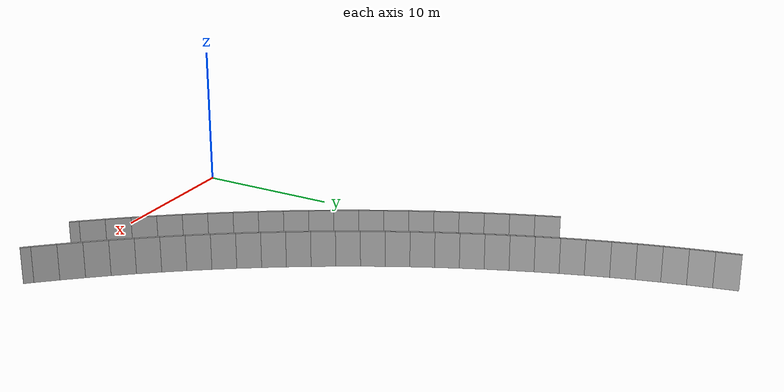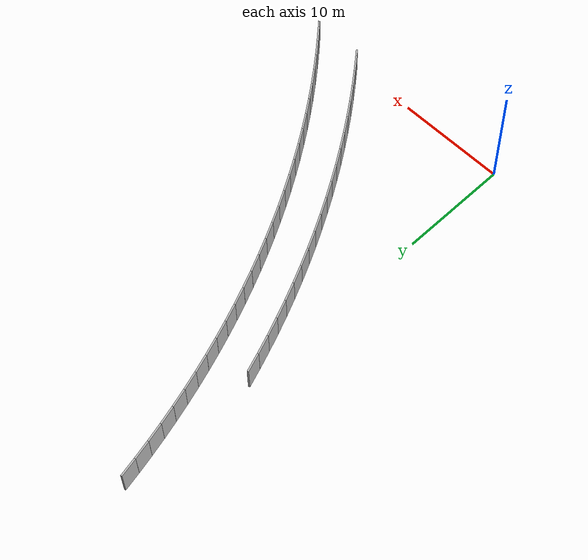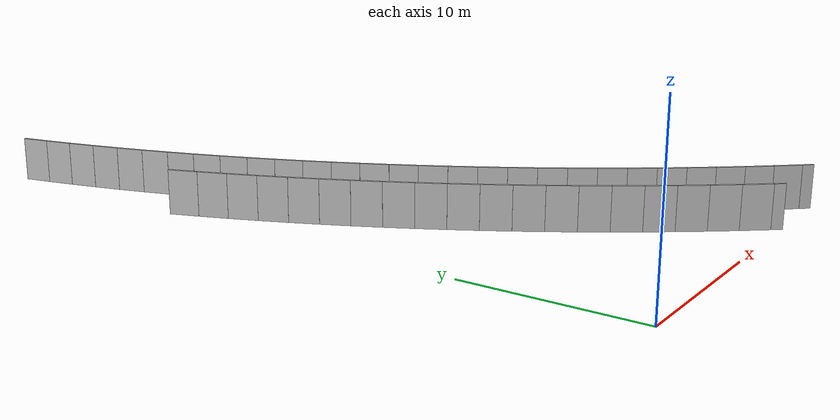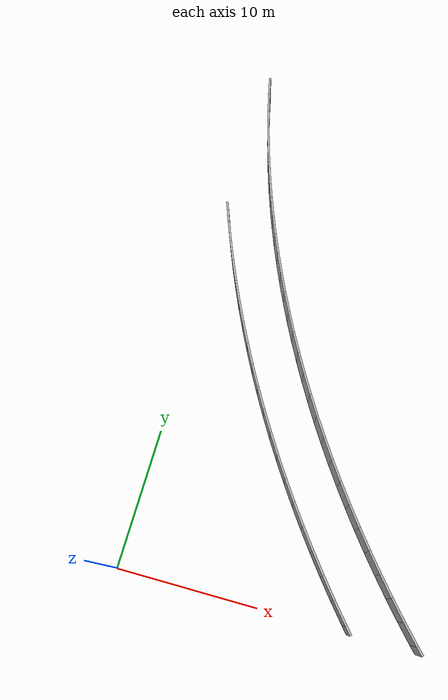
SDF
<?xml version="1.0" ?>
<sdf version="1.6">
  <model name="sps_1200">
    <pose frame="">0 0 0 0 -0 0</pose>
    <static>1</static>
    <self_collide>0</self_collide>
    <allow_auto_disable>0</allow_auto_disable>
    <link name="Wall1564">
      <kinematic>0</kinematic>
      <gravity>1</gravity>
      <self_collide>0</self_collide>
      <collision name="collision">
        <geometry>
          <box>
            <size>0.649497 0.15 2.5</size>
          </box>
        </geometry>
        <pose frame="">0 0 0 0 -0 0</pose>
      </collision>
      <visual name="visual">
        <geometry>
          <box>
            <size>0.649497 0.15 2.5</size>
          </box>
        </geometry>
        <pose frame="">0 0 0 0 -0 0</pose>
        <cast_shadows>1</cast_shadows>
        <transparency>0.0</transparency>
      </visual>
      <pose frame="">16.0914 0.245552 1.25 0 -0 2.28422</pose>
    </link>
    <link name="Wall1565">
      <kinematic>0</kinematic>
      <gravity>1</gravity>
      <self_collide>0</self_collide>
      <collision name="collision">
        <geometry>
          <box>
            <size>1.70127 0.15 2.5</size>
          </box>
        </geometry>
        <pose frame="">0 0 0 0 -0 0</pose>
      </collision>
      <visual name="visual">
        <geometry>
          <box>
            <size>1.70127 0.15 2.5</size>
          </box>
        </geometry>
        <pose frame="">0 0 0 0 -0 0</pose>
        <cast_shadows>1</cast_shadows>
        <transparency>0.0</transparency>
      </visual>
      <pose frame="">15.3346 1.14479 1.25 0 -0 2.26515</pose>
    </link>
    <link name="Wall1566">
      <kinematic>0</kinematic>
      <gravity>1</gravity>
      <self_collide>0</self_collide>
      <collision name="collision">
        <geometry>
          <box>
            <size>1.70131 0.15 2.5</size>
          </box>
        </geometry>
        <pose frame="">0 0 0 0 -0 0</pose>
      </collision>
      <visual name="visual">
        <geometry>
          <box>
            <size>1.70131 0.15 2.5</size>
          </box>
        </geometry>
        <pose frame="">0 0 0 0 -0 0</pose>
        <cast_shadows>1</cast_shadows>
        <transparency>0.0</transparency>
      </visual>
      <pose frame="">14.2585 2.46248 1.25 0 -0 2.246</pose>
    </link>
    <link name="Wall1567">
      <kinematic>0</kinematic>
      <gravity>1</gravity>
      <self_collide>0</self_collide>
      <collision name="collision">
        <geometry>
          <box>
            <size>1.7014 0.15 2.5</size>
          </box>
        </geometry>
        <pose frame="">0 0 0 0 -0 0</pose>
      </collision>
      <visual name="visual">
        <geometry>
          <box>
            <size>1.7014 0.15 2.5</size>
          </box>
        </geometry>
        <pose frame="">0 0 0 0 -0 0</pose>
        <cast_shadows>1</cast_shadows>
        <transparency>0.0</transparency>
      </visual>
      <pose frame="">13.208 3.80067 1.25 0 -0 2.22667</pose>
    </link>
    <link name="Wall1568">
      <kinematic>0</kinematic>
      <gravity>1</gravity>
      <self_collide>0</self_collide>
      <collision name="collision">
        <geometry>
          <box>
            <size>1.70123 0.15 2.5</size>
          </box>
        </geometry>
        <pose frame="">0 0 0 0 -0 0</pose>
      </collision>
      <visual name="visual">
        <geometry>
          <box>
            <size>1.70123 0.15 2.5</size>
          </box>
        </geometry>
        <pose frame="">0 0 0 0 -0 0</pose>
        <cast_shadows>1</cast_shadows>
        <transparency>0.0</transparency>
      </visual>
      <pose frame="">12.1834 5.15877 1.25 0 -0 2.2076</pose>
    </link>
    <link name="Wall1569">
      <kinematic>0</kinematic>
      <gravity>1</gravity>
      <self_collide>0</self_collide>
      <collision name="collision">
        <geometry>
          <box>
            <size>1.70119 0.15 2.5</size>
          </box>
        </geometry>
        <pose frame="">0 0 0 0 -0 0</pose>
      </collision>
      <visual name="visual">
        <geometry>
          <box>
            <size>1.70119 0.15 2.5</size>
          </box>
        </geometry>
        <pose frame="">0 0 0 0 -0 0</pose>
        <cast_shadows>1</cast_shadows>
        <transparency>0.0</transparency>
      </visual>
      <pose frame="">11.1851 6.53618 1.25 0 -0 2.1883</pose>
    </link>
    <link name="Wall1570">
      <kinematic>0</kinematic>
      <gravity>1</gravity>
      <self_collide>0</self_collide>
      <collision name="collision">
        <geometry>
          <box>
            <size>1.70131 0.15 2.5</size>
          </box>
        </geometry>
        <pose frame="">0 0 0 0 -0 0</pose>
      </collision>
      <visual name="visual">
        <geometry>
          <box>
            <size>1.70131 0.15 2.5</size>
          </box>
        </geometry>
        <pose frame="">0 0 0 0 -0 0</pose>
        <cast_shadows>1</cast_shadows>
        <transparency>0.0</transparency>
      </visual>
      <pose frame="">10.2136 7.9326 1.25 0 -0 2.16906</pose>
    </link>
    <link name="Wall1571">
      <kinematic>0</kinematic>
      <gravity>1</gravity>
      <self_collide>0</self_collide>
      <collision name="collision">
        <geometry>
          <box>
            <size>1.70126 0.15 2.5</size>
          </box>
        </geometry>
        <pose frame="">0 0 0 0 -0 0</pose>
      </collision>
      <visual name="visual">
        <geometry>
          <box>
            <size>1.70126 0.15 2.5</size>
          </box>
        </geometry>
        <pose frame="">0 0 0 0 -0 0</pose>
        <cast_shadows>1</cast_shadows>
        <transparency>0.0</transparency>
      </visual>
      <pose frame="">9.26885 9.3474 1.25 0 -0 2.15001</pose>
    </link>
    <link name="Wall1572">
      <kinematic>0</kinematic>
      <gravity>1</gravity>
      <self_collide>0</self_collide>
      <collision name="collision">
        <geometry>
          <box>
            <size>1.70135 0.15 2.5</size>
          </box>
        </geometry>
        <pose frame="">0 0 0 0 -0 0</pose>
      </collision>
      <visual name="visual">
        <geometry>
          <box>
            <size>1.70135 0.15 2.5</size>
          </box>
        </geometry>
        <pose frame="">0 0 0 0 -0 0</pose>
        <cast_shadows>1</cast_shadows>
        <transparency>0.0</transparency>
      </visual>
      <pose frame="">8.35146 10.7801 1.25 0 -0 2.13068</pose>
    </link>
    <link name="Wall1573">
      <kinematic>0</kinematic>
      <gravity>1</gravity>
      <self_collide>0</self_collide>
      <collision name="collision">
        <geometry>
          <box>
            <size>1.70138 0.15 2.5</size>
          </box>
        </geometry>
        <pose frame="">0 0 0 0 -0 0</pose>
      </collision>
      <visual name="visual">
        <geometry>
          <box>
            <size>1.70138 0.15 2.5</size>
          </box>
        </geometry>
        <pose frame="">0 0 0 0 -0 0</pose>
        <cast_shadows>1</cast_shadows>
        <transparency>0.0</transparency>
      </visual>
      <pose frame="">7.46175 12.2302 1.25 0 -0 2.11156</pose>
    </link>
    <link name="Wall1574">
      <kinematic>0</kinematic>
      <gravity>1</gravity>
      <self_collide>0</self_collide>
      <collision name="collision">
        <geometry>
          <box>
            <size>1.70138 0.15 2.5</size>
          </box>
        </geometry>
        <pose frame="">0 0 0 0 -0 0</pose>
      </collision>
      <visual name="visual">
        <geometry>
          <box>
            <size>1.70138 0.15 2.5</size>
          </box>
        </geometry>
        <pose frame="">0 0 0 0 -0 0</pose>
        <cast_shadows>1</cast_shadows>
        <transparency>0.0</transparency>
      </visual>
      <pose frame="">6.60003 13.6971 1.25 0 -0 2.0923</pose>
    </link>
    <link name="Wall1575">
      <kinematic>0</kinematic>
      <gravity>1</gravity>
      <self_collide>0</self_collide>
      <collision name="collision">
        <geometry>
          <box>
            <size>1.70117 0.15 2.5</size>
          </box>
        </geometry>
        <pose frame="">0 0 0 0 -0 0</pose>
      </collision>
      <visual name="visual">
        <geometry>
          <box>
            <size>1.70117 0.15 2.5</size>
          </box>
        </geometry>
        <pose frame="">0 0 0 0 -0 0</pose>
        <cast_shadows>1</cast_shadows>
        <transparency>0.0</transparency>
      </visual>
      <pose frame="">5.76665 15.1802 1.25 0 -0 2.07319</pose>
    </link>
    <link name="Wall1576">
      <kinematic>0</kinematic>
      <gravity>1</gravity>
      <self_collide>0</self_collide>
      <collision name="collision">
        <geometry>
          <box>
            <size>1.70126 0.15 2.5</size>
          </box>
        </geometry>
        <pose frame="">0 0 0 0 -0 0</pose>
      </collision>
      <visual name="visual">
        <geometry>
          <box>
            <size>1.70126 0.15 2.5</size>
          </box>
        </geometry>
        <pose frame="">0 0 0 0 -0 0</pose>
        <cast_shadows>1</cast_shadows>
        <transparency>0.0</transparency>
      </visual>
      <pose frame="">4.96197 16.679 1.25 0 -0 2.05386</pose>
    </link>
    <link name="Wall1577">
      <kinematic>0</kinematic>
      <gravity>1</gravity>
      <self_collide>0</self_collide>
      <collision name="collision">
        <geometry>
          <box>
            <size>1.70148 0.15 2.5</size>
          </box>
        </geometry>
        <pose frame="">0 0 0 0 -0 0</pose>
      </collision>
      <visual name="visual">
        <geometry>
          <box>
            <size>1.70148 0.15 2.5</size>
          </box>
        </geometry>
        <pose frame="">0 0 0 0 -0 0</pose>
        <cast_shadows>1</cast_shadows>
        <transparency>0.0</transparency>
      </visual>
      <pose frame="">4.18615 18.1931 1.25 0 -0 2.03476</pose>
    </link>
    <link name="Wall1578">
      <kinematic>0</kinematic>
      <gravity>1</gravity>
      <self_collide>0</self_collide>
      <collision name="collision">
        <geometry>
          <box>
            <size>1.70127 0.15 2.5</size>
          </box>
        </geometry>
        <pose frame="">0 0 0 0 -0 0</pose>
      </collision>
      <visual name="visual">
        <geometry>
          <box>
            <size>1.70127 0.15 2.5</size>
          </box>
        </geometry>
        <pose frame="">0 0 0 0 -0 0</pose>
        <cast_shadows>1</cast_shadows>
        <transparency>0.0</transparency>
      </visual>
      <pose frame="">3.43954 19.7218 1.25 0 -0 2.01546</pose>
    </link>
    <link name="Wall1579">
      <kinematic>0</kinematic>
      <gravity>1</gravity>
      <self_collide>0</self_collide>
      <collision name="collision">
        <geometry>
          <box>
            <size>1.70138 0.15 2.5</size>
          </box>
        </geometry>
        <pose frame="">0 0 0 0 -0 0</pose>
      </collision>
      <visual name="visual">
        <geometry>
          <box>
            <size>1.70138 0.15 2.5</size>
          </box>
        </geometry>
        <pose frame="">0 0 0 0 -0 0</pose>
        <cast_shadows>1</cast_shadows>
        <transparency>0.0</transparency>
      </visual>
      <pose frame="">2.72243 21.2645 1.25 0 -0 1.99636</pose>
    </link>
    <link name="Wall1580">
      <kinematic>0</kinematic>
      <gravity>1</gravity>
      <self_collide>0</self_collide>
      <collision name="collision">
        <geometry>
          <box>
            <size>1.70125 0.15 2.5</size>
          </box>
        </geometry>
        <pose frame="">0 0 0 0 -0 0</pose>
      </collision>
      <visual name="visual">
        <geometry>
          <box>
            <size>1.70125 0.15 2.5</size>
          </box>
        </geometry>
        <pose frame="">0 0 0 0 -0 0</pose>
        <cast_shadows>1</cast_shadows>
        <transparency>0.0</transparency>
      </visual>
      <pose frame="">2.03506 22.8207 1.25 0 -0 1.9771</pose>
    </link>
    <link name="Wall1581">
      <kinematic>0</kinematic>
      <gravity>1</gravity>
      <self_collide>0</self_collide>
      <collision name="collision">
        <geometry>
          <box>
            <size>1.70114 0.15 2.5</size>
          </box>
        </geometry>
        <pose frame="">0 0 0 0 -0 0</pose>
      </collision>
      <visual name="visual">
        <geometry>
          <box>
            <size>1.70114 0.15 2.5</size>
          </box>
        </geometry>
        <pose frame="">0 0 0 0 -0 0</pose>
        <cast_shadows>1</cast_shadows>
        <transparency>0.0</transparency>
      </visual>
      <pose frame="">1.37777 24.3897 1.25 0 -0 1.95791</pose>
    </link>
    <link name="Wall1582">
      <kinematic>0</kinematic>
      <gravity>1</gravity>
      <self_collide>0</self_collide>
      <collision name="collision">
        <geometry>
          <box>
            <size>1.70123 0.15 2.5</size>
          </box>
        </geometry>
        <pose frame="">0 0 0 0 -0 0</pose>
      </collision>
      <visual name="visual">
        <geometry>
          <box>
            <size>1.70123 0.15 2.5</size>
          </box>
        </geometry>
        <pose frame="">0 0 0 0 -0 0</pose>
        <cast_shadows>1</cast_shadows>
        <transparency>0.0</transparency>
      </visual>
      <pose frame="">0.750663 25.971 1.25 0 -0 1.93878</pose>
    </link>
    <link name="Wall1583">
      <kinematic>0</kinematic>
      <gravity>1</gravity>
      <self_collide>0</self_collide>
      <collision name="collision">
        <geometry>
          <box>
            <size>1.70125 0.15 2.5</size>
          </box>
        </geometry>
        <pose frame="">0 0 0 0 -0 0</pose>
      </collision>
      <visual name="visual">
        <geometry>
          <box>
            <size>1.70125 0.15 2.5</size>
          </box>
        </geometry>
        <pose frame="">0 0 0 0 -0 0</pose>
        <cast_shadows>1</cast_shadows>
        <transparency>0.0</transparency>
      </visual>
      <pose frame="">0.153953 27.5641 1.25 0 -0 1.91959</pose>
    </link>
    <link name="Wall1801">
      <kinematic>0</kinematic>
      <gravity>1</gravity>
      <self_collide>0</self_collide>
      <collision name="collision">
        <geometry>
          <box>
            <size>1.62885 0.15 2.5</size>
          </box>
        </geometry>
        <pose frame="">0 0 0 0 -0 0</pose>
      </collision>
      <visual name="visual">
        <geometry>
          <box>
            <size>1.62885 0.15 2.5</size>
          </box>
        </geometry>
        <pose frame="">0 0 0 0 -0 0</pose>
        <cast_shadows>1</cast_shadows>
        <transparency>0.0</transparency>
      </visual>
      <pose frame="">0.246543 39.8385 1.25 0 0 -1.35762</pose>
    </link>
    <link name="Wall1802">
      <kinematic>0</kinematic>
      <gravity>1</gravity>
      <self_collide>0</self_collide>
      <collision name="collision">
        <geometry>
          <box>
            <size>1.62896 0.15 2.5</size>
          </box>
        </geometry>
        <pose frame="">0 0 0 0 -0 0</pose>
      </collision>
      <visual name="visual">
        <geometry>
          <box>
            <size>1.62896 0.15 2.5</size>
          </box>
        </geometry>
        <pose frame="">0 0 0 0 -0 0</pose>
        <cast_shadows>1</cast_shadows>
        <transparency>0.0</transparency>
      </visual>
      <pose frame="">0.606345 38.2499 1.25 0 0 -1.3385</pose>
    </link>
    <link name="Wall1803">
      <kinematic>0</kinematic>
      <gravity>1</gravity>
      <self_collide>0</self_collide>
      <collision name="collision">
        <geometry>
          <box>
            <size>1.62879 0.15 2.5</size>
          </box>
        </geometry>
        <pose frame="">0 0 0 0 -0 0</pose>
      </collision>
      <visual name="visual">
        <geometry>
          <box>
            <size>1.62879 0.15 2.5</size>
          </box>
        </geometry>
        <pose frame="">0 0 0 0 -0 0</pose>
        <cast_shadows>1</cast_shadows>
        <transparency>0.0</transparency>
      </visual>
      <pose frame="">0.996452 36.6685 1.25 0 0 -1.31937</pose>
    </link>
    <link name="Wall1804">
      <kinematic>0</kinematic>
      <gravity>1</gravity>
      <self_collide>0</self_collide>
      <collision name="collision">
        <geometry>
          <box>
            <size>1.62885 0.15 2.5</size>
          </box>
        </geometry>
        <pose frame="">0 0 0 0 -0 0</pose>
      </collision>
      <visual name="visual">
        <geometry>
          <box>
            <size>1.62885 0.15 2.5</size>
          </box>
        </geometry>
        <pose frame="">0 0 0 0 -0 0</pose>
        <cast_shadows>1</cast_shadows>
        <transparency>0.0</transparency>
      </visual>
      <pose frame="">1.41665 35.0949 1.25 0 0 -1.30034</pose>
    </link>
    <link name="Wall1805">
      <kinematic>0</kinematic>
      <gravity>1</gravity>
      <self_collide>0</self_collide>
      <collision name="collision">
        <geometry>
          <box>
            <size>1.62905 0.15 2.5</size>
          </box>
        </geometry>
        <pose frame="">0 0 0 0 -0 0</pose>
      </collision>
      <visual name="visual">
        <geometry>
          <box>
            <size>1.62905 0.15 2.5</size>
          </box>
        </geometry>
        <pose frame="">0 0 0 0 -0 0</pose>
        <cast_shadows>1</cast_shadows>
        <transparency>0.0</transparency>
      </visual>
      <pose frame="">1.86694 33.5295 1.25 0 0 -1.28108</pose>
    </link>
    <link name="Wall1806">
      <kinematic>0</kinematic>
      <gravity>1</gravity>
      <self_collide>0</self_collide>
      <collision name="collision">
        <geometry>
          <box>
            <size>1.62885 0.15 2.5</size>
          </box>
        </geometry>
        <pose frame="">0 0 0 0 -0 0</pose>
      </collision>
      <visual name="visual">
        <geometry>
          <box>
            <size>1.62885 0.15 2.5</size>
          </box>
        </geometry>
        <pose frame="">0 0 0 0 -0 0</pose>
        <cast_shadows>1</cast_shadows>
        <transparency>0.0</transparency>
      </visual>
      <pose frame="">2.34713 31.973 1.25 0 0 -1.26202</pose>
    </link>
    <link name="Wall1807">
      <kinematic>0</kinematic>
      <gravity>1</gravity>
      <self_collide>0</self_collide>
      <collision name="collision">
        <geometry>
          <box>
            <size>1.62904 0.15 2.5</size>
          </box>
        </geometry>
        <pose frame="">0 0 0 0 -0 0</pose>
      </collision>
      <visual name="visual">
        <geometry>
          <box>
            <size>1.62904 0.15 2.5</size>
          </box>
        </geometry>
        <pose frame="">0 0 0 0 -0 0</pose>
        <cast_shadows>1</cast_shadows>
        <transparency>0.0</transparency>
      </visual>
      <pose frame="">2.85705 30.426 1.25 0 0 -1.24277</pose>
    </link>
    <link name="Wall1808">
      <kinematic>0</kinematic>
      <gravity>1</gravity>
      <self_collide>0</self_collide>
      <collision name="collision">
        <geometry>
          <box>
            <size>1.62897 0.15 2.5</size>
          </box>
        </geometry>
        <pose frame="">0 0 0 0 -0 0</pose>
      </collision>
      <visual name="visual">
        <geometry>
          <box>
            <size>1.62897 0.15 2.5</size>
          </box>
        </geometry>
        <pose frame="">0 0 0 0 -0 0</pose>
        <cast_shadows>1</cast_shadows>
        <transparency>0.0</transparency>
      </visual>
      <pose frame="">3.39657 28.889 1.25 0 0 -1.22365</pose>
    </link>
    <link name="Wall1809">
      <kinematic>0</kinematic>
      <gravity>1</gravity>
      <self_collide>0</self_collide>
      <collision name="collision">
        <geometry>
          <box>
            <size>1.62886 0.15 2.5</size>
          </box>
        </geometry>
        <pose frame="">0 0 0 0 -0 0</pose>
      </collision>
      <visual name="visual">
        <geometry>
          <box>
            <size>1.62886 0.15 2.5</size>
          </box>
        </geometry>
        <pose frame="">0 0 0 0 -0 0</pose>
        <cast_shadows>1</cast_shadows>
        <transparency>0.0</transparency>
      </visual>
      <pose frame="">3.96535 27.3627 1.25 0 0 -1.20451</pose>
    </link>
    <link name="Wall1810">
      <kinematic>0</kinematic>
      <gravity>1</gravity>
      <self_collide>0</self_collide>
      <collision name="collision">
        <geometry>
          <box>
            <size>1.62884 0.15 2.5</size>
          </box>
        </geometry>
        <pose frame="">0 0 0 0 -0 0</pose>
      </collision>
      <visual name="visual">
        <geometry>
          <box>
            <size>1.62884 0.15 2.5</size>
          </box>
        </geometry>
        <pose frame="">0 0 0 0 -0 0</pose>
        <cast_shadows>1</cast_shadows>
        <transparency>0.0</transparency>
      </visual>
      <pose frame="">4.56316 25.8476 1.25 0 0 -1.18545</pose>
    </link>
    <link name="Wall1811">
      <kinematic>0</kinematic>
      <gravity>1</gravity>
      <self_collide>0</self_collide>
      <collision name="collision">
        <geometry>
          <box>
            <size>1.62893 0.15 2.5</size>
          </box>
        </geometry>
        <pose frame="">0 0 0 0 -0 0</pose>
      </collision>
      <visual name="visual">
        <geometry>
          <box>
            <size>1.62893 0.15 2.5</size>
          </box>
        </geometry>
        <pose frame="">0 0 0 0 -0 0</pose>
        <cast_shadows>1</cast_shadows>
        <transparency>0.0</transparency>
      </visual>
      <pose frame="">5.18987 24.3442 1.25 0 0 -1.16623</pose>
    </link>
    <link name="Wall1812">
      <kinematic>0</kinematic>
      <gravity>1</gravity>
      <self_collide>0</self_collide>
      <collision name="collision">
        <geometry>
          <box>
            <size>1.62898 0.15 2.5</size>
          </box>
        </geometry>
        <pose frame="">0 0 0 0 -0 0</pose>
      </collision>
      <visual name="visual">
        <geometry>
          <box>
            <size>1.62898 0.15 2.5</size>
          </box>
        </geometry>
        <pose frame="">0 0 0 0 -0 0</pose>
        <cast_shadows>1</cast_shadows>
        <transparency>0.0</transparency>
      </visual>
      <pose frame="">5.84527 22.853 1.25 0 0 -1.14717</pose>
    </link>
    <link name="Wall1813">
      <kinematic>0</kinematic>
      <gravity>1</gravity>
      <self_collide>0</self_collide>
      <collision name="collision">
        <geometry>
          <box>
            <size>1.62893 0.15 2.5</size>
          </box>
        </geometry>
        <pose frame="">0 0 0 0 -0 0</pose>
      </collision>
      <visual name="visual">
        <geometry>
          <box>
            <size>1.62893 0.15 2.5</size>
          </box>
        </geometry>
        <pose frame="">0 0 0 0 -0 0</pose>
        <cast_shadows>1</cast_shadows>
        <transparency>0.0</transparency>
      </visual>
      <pose frame="">6.52907 21.3746 1.25 0 0 -1.12796</pose>
    </link>
    <link name="Wall1814">
      <kinematic>0</kinematic>
      <gravity>1</gravity>
      <self_collide>0</self_collide>
      <collision name="collision">
        <geometry>
          <box>
            <size>1.6289 0.15 2.5</size>
          </box>
        </geometry>
        <pose frame="">0 0 0 0 -0 0</pose>
      </collision>
      <visual name="visual">
        <geometry>
          <box>
            <size>1.6289 0.15 2.5</size>
          </box>
        </geometry>
        <pose frame="">0 0 0 0 -0 0</pose>
        <cast_shadows>1</cast_shadows>
        <transparency>0.0</transparency>
      </visual>
      <pose frame="">7.24105 19.9096 1.25 0 0 -1.10887</pose>
    </link>
    <link name="Wall1815">
      <kinematic>0</kinematic>
      <gravity>1</gravity>
      <self_collide>0</self_collide>
      <collision name="collision">
        <geometry>
          <box>
            <size>1.62896 0.15 2.5</size>
          </box>
        </geometry>
        <pose frame="">0 0 0 0 -0 0</pose>
      </collision>
      <visual name="visual">
        <geometry>
          <box>
            <size>1.62896 0.15 2.5</size>
          </box>
        </geometry>
        <pose frame="">0 0 0 0 -0 0</pose>
        <cast_shadows>1</cast_shadows>
        <transparency>0.0</transparency>
      </visual>
      <pose frame="">7.98095 18.4585 1.25 0 0 -1.08967</pose>
    </link>
    <link name="Wall1816">
      <kinematic>0</kinematic>
      <gravity>1</gravity>
      <self_collide>0</self_collide>
      <collision name="collision">
        <geometry>
          <box>
            <size>1.62901 0.15 2.5</size>
          </box>
        </geometry>
        <pose frame="">0 0 0 0 -0 0</pose>
      </collision>
      <visual name="visual">
        <geometry>
          <box>
            <size>1.62901 0.15 2.5</size>
          </box>
        </geometry>
        <pose frame="">0 0 0 0 -0 0</pose>
        <cast_shadows>1</cast_shadows>
        <transparency>0.0</transparency>
      </visual>
      <pose frame="">8.74856 17.0218 1.25 0 0 -1.07053</pose>
    </link>
    <link name="Wall1817">
      <kinematic>0</kinematic>
      <gravity>1</gravity>
      <self_collide>0</self_collide>
      <collision name="collision">
        <geometry>
          <box>
            <size>1.62887 0.15 2.5</size>
          </box>
        </geometry>
        <pose frame="">0 0 0 0 -0 0</pose>
      </collision>
      <visual name="visual">
        <geometry>
          <box>
            <size>1.62887 0.15 2.5</size>
          </box>
        </geometry>
        <pose frame="">0 0 0 0 -0 0</pose>
        <cast_shadows>1</cast_shadows>
        <transparency>0.0</transparency>
      </visual>
      <pose frame="">9.54354 15.6001 1.25 0 0 -1.05133</pose>
    </link>
    <link name="Wall1818">
      <kinematic>0</kinematic>
      <gravity>1</gravity>
      <self_collide>0</self_collide>
      <collision name="collision">
        <geometry>
          <box>
            <size>1.62897 0.15 2.5</size>
          </box>
        </geometry>
        <pose frame="">0 0 0 0 -0 0</pose>
      </collision>
      <visual name="visual">
        <geometry>
          <box>
            <size>1.62897 0.15 2.5</size>
          </box>
        </geometry>
        <pose frame="">0 0 0 0 -0 0</pose>
        <cast_shadows>1</cast_shadows>
        <transparency>0.0</transparency>
      </visual>
      <pose frame="">10.3654 14.1938 1.25 0 0 -1.03245</pose>
    </link>
    <link name="Wall1819">
      <kinematic>0</kinematic>
      <gravity>1</gravity>
      <self_collide>0</self_collide>
      <collision name="collision">
        <geometry>
          <box>
            <size>1.62881 0.15 2.5</size>
          </box>
        </geometry>
        <pose frame="">0 0 0 0 -0 0</pose>
      </collision>
      <visual name="visual">
        <geometry>
          <box>
            <size>1.62881 0.15 2.5</size>
          </box>
        </geometry>
        <pose frame="">0 0 0 0 -0 0</pose>
        <cast_shadows>1</cast_shadows>
        <transparency>0.0</transparency>
      </visual>
      <pose frame="">11.214 12.8035 1.25 0 0 -1.01311</pose>
    </link>
    <link name="Wall1820">
      <kinematic>0</kinematic>
      <gravity>1</gravity>
      <self_collide>0</self_collide>
      <collision name="collision">
        <geometry>
          <box>
            <size>1.62901 0.15 2.5</size>
          </box>
        </geometry>
        <pose frame="">0 0 0 0 -0 0</pose>
      </collision>
      <visual name="visual">
        <geometry>
          <box>
            <size>1.62901 0.15 2.5</size>
          </box>
        </geometry>
        <pose frame="">0 0 0 0 -0 0</pose>
        <cast_shadows>1</cast_shadows>
        <transparency>0.0</transparency>
      </visual>
      <pose frame="">12.0893 11.4298 1.25 0 0 -0.993955</pose>
    </link>
    <link name="Wall1821">
      <kinematic>0</kinematic>
      <gravity>1</gravity>
      <self_collide>0</self_collide>
      <collision name="collision">
        <geometry>
          <box>
            <size>1.62892 0.15 2.5</size>
          </box>
        </geometry>
        <pose frame="">0 0 0 0 -0 0</pose>
      </collision>
      <visual name="visual">
        <geometry>
          <box>
            <size>1.62892 0.15 2.5</size>
          </box>
        </geometry>
        <pose frame="">0 0 0 0 -0 0</pose>
        <cast_shadows>1</cast_shadows>
        <transparency>0.0</transparency>
      </visual>
      <pose frame="">12.9906 10.073 1.25 0 0 -0.974937</pose>
    </link>
    <link name="Wall1822">
      <kinematic>0</kinematic>
      <gravity>1</gravity>
      <self_collide>0</self_collide>
      <collision name="collision">
        <geometry>
          <box>
            <size>1.62881 0.15 2.5</size>
          </box>
        </geometry>
        <pose frame="">0 0 0 0 -0 0</pose>
      </collision>
      <visual name="visual">
        <geometry>
          <box>
            <size>1.62881 0.15 2.5</size>
          </box>
        </geometry>
        <pose frame="">0 0 0 0 -0 0</pose>
        <cast_shadows>1</cast_shadows>
        <transparency>0.0</transparency>
      </visual>
      <pose frame="">13.9177 8.73378 1.25 0 0 -0.955613</pose>
    </link>
    <link name="Wall1823">
      <kinematic>0</kinematic>
      <gravity>1</gravity>
      <self_collide>0</self_collide>
      <collision name="collision">
        <geometry>
          <box>
            <size>1.62895 0.15 2.5</size>
          </box>
        </geometry>
        <pose frame="">0 0 0 0 -0 0</pose>
      </collision>
      <visual name="visual">
        <geometry>
          <box>
            <size>1.62895 0.15 2.5</size>
          </box>
        </geometry>
        <pose frame="">0 0 0 0 -0 0</pose>
        <cast_shadows>1</cast_shadows>
        <transparency>0.0</transparency>
      </visual>
      <pose frame="">14.8703 7.41258 1.25 0 0 -0.936595</pose>
    </link>
    <link name="Wall1824">
      <kinematic>0</kinematic>
      <gravity>1</gravity>
      <self_collide>0</self_collide>
      <collision name="collision">
        <geometry>
          <box>
            <size>1.62879 0.15 2.5</size>
          </box>
        </geometry>
        <pose frame="">0 0 0 0 -0 0</pose>
      </collision>
      <visual name="visual">
        <geometry>
          <box>
            <size>1.62879 0.15 2.5</size>
          </box>
        </geometry>
        <pose frame="">0 0 0 0 -0 0</pose>
        <cast_shadows>1</cast_shadows>
        <transparency>0.0</transparency>
      </visual>
      <pose frame="">15.8479 6.10979 1.25 0 0 -0.9175</pose>
    </link>
    <link name="Wall1825">
      <kinematic>0</kinematic>
      <gravity>1</gravity>
      <self_collide>0</self_collide>
      <collision name="collision">
        <geometry>
          <box>
            <size>1.62908 0.15 2.5</size>
          </box>
        </geometry>
        <pose frame="">0 0 0 0 -0 0</pose>
      </collision>
      <visual name="visual">
        <geometry>
          <box>
            <size>1.62908 0.15 2.5</size>
          </box>
        </geometry>
        <pose frame="">0 0 0 0 -0 0</pose>
        <cast_shadows>1</cast_shadows>
        <transparency>0.0</transparency>
      </visual>
      <pose frame="">16.8502 4.82588 1.25 0 0 -0.898337</pose>
    </link>
    <link name="Wall1826">
      <kinematic>0</kinematic>
      <gravity>1</gravity>
      <self_collide>0</self_collide>
      <collision name="collision">
        <geometry>
          <box>
            <size>1.62895 0.15 2.5</size>
          </box>
        </geometry>
        <pose frame="">0 0 0 0 -0 0</pose>
      </collision>
      <visual name="visual">
        <geometry>
          <box>
            <size>1.62895 0.15 2.5</size>
          </box>
        </geometry>
        <pose frame="">0 0 0 0 -0 0</pose>
        <cast_shadows>1</cast_shadows>
        <transparency>0.0</transparency>
      </visual>
      <pose frame="">17.8771 3.56139 1.25 0 0 -0.879114</pose>
    </link>
    <link name="Wall1827">
      <kinematic>0</kinematic>
      <gravity>1</gravity>
      <self_collide>0</self_collide>
      <collision name="collision">
        <geometry>
          <box>
            <size>1.62906 0.15 2.5</size>
          </box>
        </geometry>
        <pose frame="">0 0 0 0 -0 0</pose>
      </collision>
      <visual name="visual">
        <geometry>
          <box>
            <size>1.62906 0.15 2.5</size>
          </box>
        </geometry>
        <pose frame="">0 0 0 0 -0 0</pose>
        <cast_shadows>1</cast_shadows>
        <transparency>0.0</transparency>
      </visual>
      <pose frame="">18.928 2.31679 1.25 0 0 -0.860045</pose>
    </link>
    <link name="Wall1828">
      <kinematic>0</kinematic>
      <gravity>1</gravity>
      <self_collide>0</self_collide>
      <collision name="collision">
        <geometry>
          <box>
            <size>1.62872 0.15 2.5</size>
          </box>
        </geometry>
        <pose frame="">0 0 0 0 -0 0</pose>
      </collision>
      <visual name="visual">
        <geometry>
          <box>
            <size>1.62872 0.15 2.5</size>
          </box>
        </geometry>
        <pose frame="">0 0 0 0 -0 0</pose>
        <cast_shadows>1</cast_shadows>
        <transparency>0.0</transparency>
      </visual>
      <pose frame="">20.0024 1.09257 1.25 0 0 -0.840914</pose>
    </link>
    <link name="Wall1829">
      <kinematic>0</kinematic>
      <gravity>1</gravity>
      <self_collide>0</self_collide>
      <collision name="collision">
        <geometry>
          <box>
            <size>0.663226 0.15 2.5</size>
          </box>
        </geometry>
        <pose frame="">0 0 0 0 -0 0</pose>
      </collision>
      <visual name="visual">
        <geometry>
          <box>
            <size>0.663226 0.15 2.5</size>
          </box>
        </geometry>
        <pose frame="">0 0 0 0 -0 0</pose>
        <cast_shadows>1</cast_shadows>
        <transparency>0.0</transparency>
      </visual>
      <pose frame="">20.7713 0.242835 1.25 0 0 -0.821673</pose>
    </link>
  </model>
</sdf>
